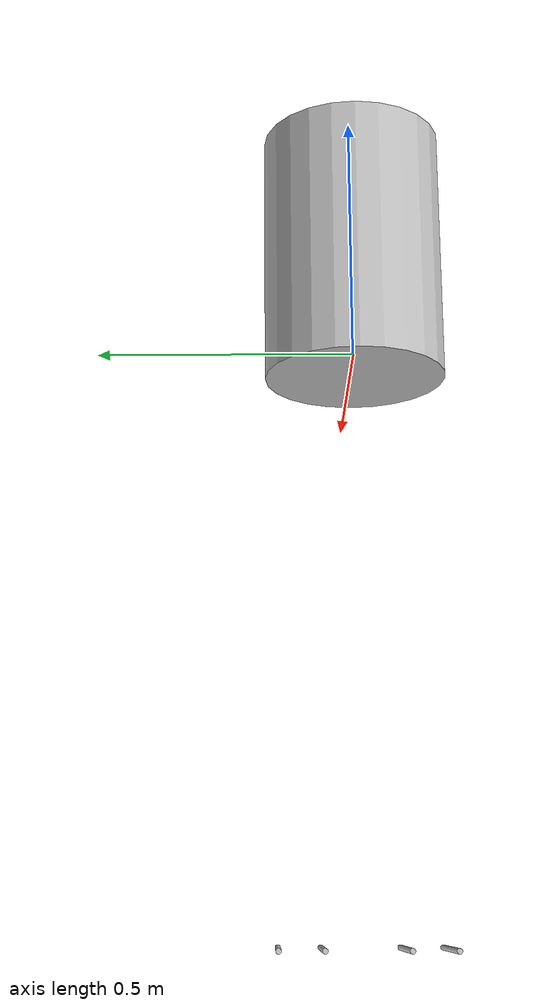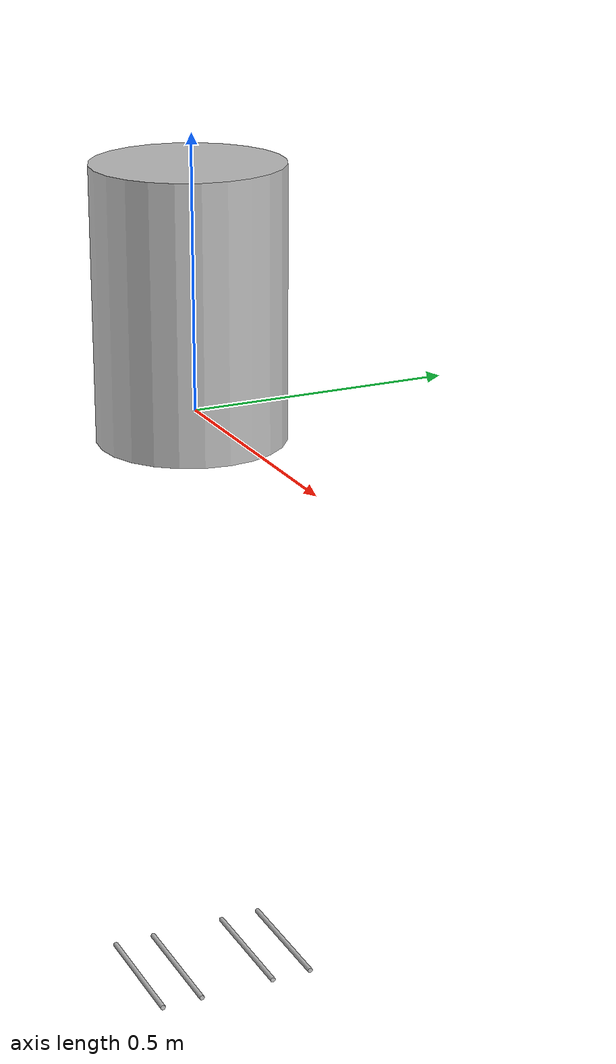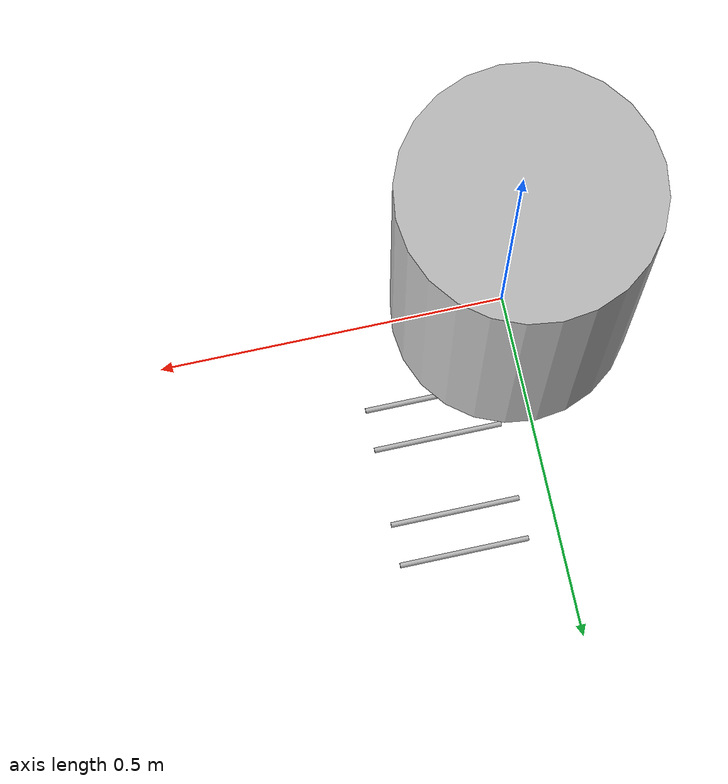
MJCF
<mujoco model="OGHR_wholeBody">
  <compiler angle="radian"/>

  <worldbody>
    <geom size="0.174519 0.250794" pos="-0.0139522 -0.00175001 0.195282" type="cylinder" rgba="0.752941 0.752941 0.752941 1"/>
    <body name="Link-hip-r-roll" pos="-0.08575 -0.1215 -0.167">
      <inertial pos="0.0763902 3.03512e-05 0.0143062" quat="0.00119945 0.714396 -0.00126727 0.69974" mass="1.80239" diaginertia="0.00272605 0.00169536 0.00125115"/>
      <joint name="Joint-hip-r-roll" pos="0 0 0" axis="1 0 0" range="-0.17453 0.43633" actuatorfrcrange="-320 320"/>
      <body name="Link-hip-r-yaw" pos="0.084 0 -0.0085">
        <inertial pos="1.96935e-08 0.00792742 -0.0418047" quat="0.946912 0.321492 0 0" mass="0.454709" diaginertia="0.000973165 0.000904719 0.000402039"/>
        <joint name="Joint-hip-r-yaw" pos="0 0 0" axis="0 0 1" range="-0.69813 0.69813" actuatorfrcrange="-160 160"/>
        <body name="Link-hip-r-pitch" pos="0 0.042 -0.0915">
          <inertial pos="0.00082061 -0.0604024 -0.109517" quat="0.708092 -0.0083477 -0.000601604 0.706071" mass="7.95221" diaginertia="0.0594962 0.0503949 0.0130436"/>
          <joint name="Joint-hip-r-pitch" pos="0 0 0" axis="0 -1 0" range="-0.7854 1.8326" actuatorfrcrange="-396 396"/>
          <body name="Link-knee-r-pitch" pos="0 -0.03675 -0.4">
            <inertial pos="0.000639236 9.62808e-05 -0.15349" quat="0.70769 -0.0011083 0.00395068 0.706511" mass="3.11551" diaginertia="0.0198799 0.0186295 0.00190828"/>
            <joint name="Joint-knee-r-pitch" pos="0 0 0" axis="0 -1 0" range="-2.35619 0.08727" actuatorfrcrange="-396 396"/>
            <body name="Link-ankel-r-pitch" pos="0 0 -0.387">
              <inertial pos="0 0 0" mass="0.106605" diaginertia="1.57904e-05 1.57904e-05 1.31288e-05"/>
              <joint name="Joint-ankel-r-pitch" pos="0 0 0" axis="0 -1 0" range="-0.43633 0.61087" actuatorfrcrange="-58.5 58.5"/>
              <body name="Link-ankel-r-roll">
                <inertial pos="0.0250704 1.34105e-06 -0.0402505" quat="4.9772e-05 0.735975 -1.8251e-05 0.677009" mass="0.961268" diaginertia="0.00487628 0.0044402 0.000704242"/>
                <joint name="Joint-ankel-r-roll" pos="0 0 0" axis="1 0 0" range="-0.43633 0.43633" actuatorfrcrange="-58.5 58.5"/>
                <geom size="0.005 0.125" pos="0.0485 -0.04 -0.063" quat="0.707105 0 0.707108 0" type="cylinder" rgba="0.752941 0.752941 0.752941 1"/>
                <geom size="0.005 0.125" pos="0.0485 0.04 -0.063" quat="0.707105 0 0.707108 0" type="cylinder" rgba="0.752941 0.752941 0.752941 1"/>
              </body>
            </body>
          </body>
        </body>
      </body>
    </body>
    <body name="Link-hip-l-roll" pos="-0.08575 0.1185 -0.167">
      <inertial pos="0.0763902 3.03513e-05 0.0143062" quat="0.00119945 0.714396 -0.00126728 0.69974" mass="1.80239" diaginertia="0.00272605 0.00169536 0.00125115"/>
      <joint name="Joint-hip-l-roll" pos="0 0 0" axis="1 0 0" range="-0.17453 0.43633" actuatorfrcrange="-320 320"/>
      <body name="Link-hip-l-yaw" pos="0.084 0 -0.0085">
        <inertial pos="-1.96942e-08 -0.00792742 -0.0418047" quat="0.946912 -0.321492 0 0" mass="0.454709" diaginertia="0.000973165 0.000904719 0.000402039"/>
        <joint name="Joint-hip-l-yaw" pos="0 0 0" axis="0 0 1" range="-0.69813 0.69813" actuatorfrcrange="-160 160"/>
        <body name="Link-hip-l-pitch" pos="0 -0.042 -0.0915">
          <inertial pos="0.00105388 0.0604023 -0.109523" quat="0.706427 -0.000327805 -0.00807602 0.70774" mass="7.95222" diaginertia="0.0594963 0.0503975 0.0130413"/>
          <joint name="Joint-hip-l-pitch" pos="0 0 0" axis="0 -1 0" range="-0.7854 1.8326" actuatorfrcrange="-396 396"/>
          <body name="Link-knee-l-pitch" pos="0 0.03675 -0.4">
            <inertial pos="0.000859577 -9.62775e-05 -0.15332" quat="0.706564 0.0041656 -0.000830509 0.707636" mass="3.11551" diaginertia="0.0198798 0.0186225 0.00191536"/>
            <joint name="Joint-knee-l-pitch" pos="0 0 0" axis="0 -1 0" range="-2.35619 0.08727" actuatorfrcrange="-396 396"/>
            <body name="Link-ankel-l-pitch" pos="0 0 -0.387">
              <inertial pos="0 0 0" mass="0.106605" diaginertia="1.57904e-05 1.57904e-05 1.31288e-05"/>
              <joint name="Joint-ankel-l-pitch" pos="0 0 0" axis="0 -1 0" range="-0.43644 0.61087" actuatorfrcrange="-58.5 58.5"/>
              <body name="Link-ankel-l-roll">
                <inertial pos="0.0250707 1.34004e-06 -0.0402494" quat="6.46646e-05 0.735975 -1.23541e-06 0.677008" mass="0.961268" diaginertia="0.00487628 0.0044402 0.000704241"/>
                <joint name="Joint-ankel-l-roll" pos="0 0 0" axis="1 0 0" range="-0.43633 0.43633" actuatorfrcrange="-58.5 58.5"/>
                <geom size="0.005 0.125" pos="0.0485 -0.04 -0.063" quat="0.707105 0 0.707108 0" type="cylinder" rgba="0.752941 0.752941 0.752941 1"/>
                <geom size="0.005 0.125" pos="0.0485 0.04 -0.063" quat="0.707105 0 0.707108 0" type="cylinder" rgba="0.752941 0.752941 0.752941 1"/>
              </body>
            </body>
          </body>
        </body>
      </body>
    </body>
  </worldbody>
</mujoco>
